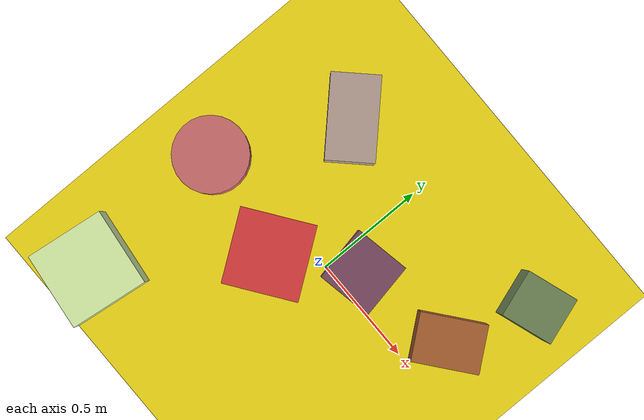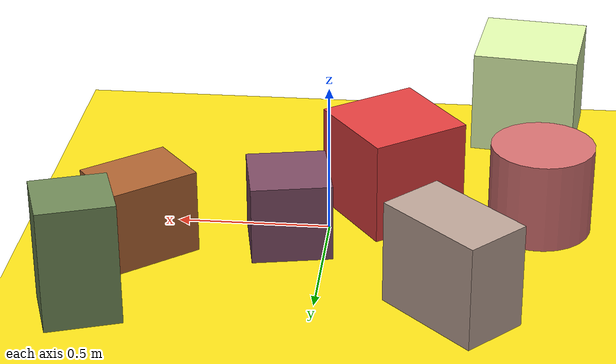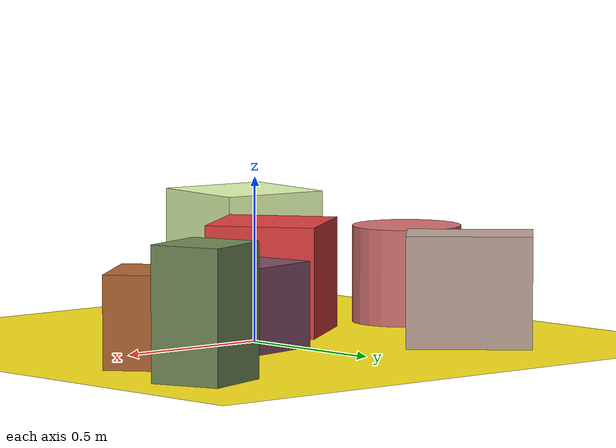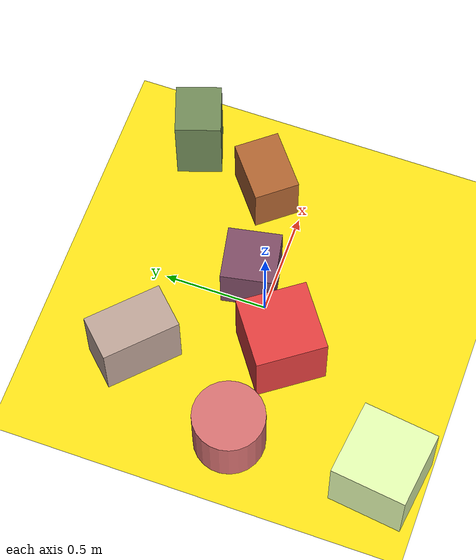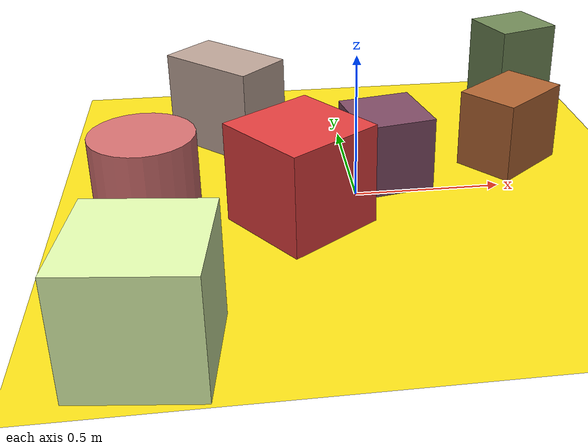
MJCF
<mujoco>
   <asset>
<texture type="skybox" builtin="gradient" rgb1="0.2 0.4 0.4" rgb2="0.4 0.9 0.7" width="500" height="500"/>
<texture name="flat_0" builtin="flat" rgb1="0.9 1.0 0.7" rgb2="0.9 1.0 0.7"  width="500" height="500"/>
<texture name="gradient_1" builtin="gradient" rgb1="0.7 0.4 0.5" rgb2="1.0 0.5 0.4" width="500" height="500"/>
<texture name="gradient_2" builtin="gradient" rgb1="0.8 0.0 0.1" rgb2="0.6 0.8 0.3" width="500" height="500"/>
<texture name="checker_3" builtin="checker" rgb1="0.3 0.7 0.3" rgb2="0.6 0.4 0.4" width="500" height="500"/>
<texture name="checker_4" builtin="checker" rgb1="0.8 0.3 0.3" rgb2="1.0 0.2 0.2" width="500" height="500"/>
<texture name="gradient_5" builtin="gradient" rgb1="0.7 0.5 0.5" rgb2="0.3 0.1 0.3" width="500" height="500"/>
<texture name="checker_6" builtin="checker" rgb1="1.0 0.5 0.7" rgb2="0.5 0.8 0.5" width="500" height="500"/><material name="flat_0_mat" reflectance="0.4350156869528564" texture="flat_0" texuniform="true"/>
<material name="gradient_1_mat" reflectance="0.5510495905612455" texture="gradient_1" texuniform="true"/>
<material name="gradient_2_mat" reflectance="0.5237440267821378" texture="gradient_2" texuniform="true"/>
<material name="checker_3_mat" reflectance="0.6958732604369441" texrepeat="6 6" texture="checker_3" texuniform="false" />
<material name="checker_4_mat" reflectance="0.007236870668525297" texrepeat="10 10" texture="checker_4" texuniform="false" />
<material name="gradient_5_mat" reflectance="0.7546186044807623" texture="gradient_5" texuniform="true"/>
<material name="checker_6_mat" reflectance="0.6291174783976697" texrepeat="5 5" texture="checker_6" texuniform="false" />
   </asset>

   <worldbody>
     <geom type="plane" size="1 1 0.1" rgba="1.0 0.9 0.1 1" />
<light pos="-0.787641128438439 0.06865326685811346 2" dir="0 0 -1" cutoff="90" diffuse="1 1 1" specular="1 1 1"/>
<geom type="box" pos="-0.65 -0.79 0.18" size="0.18 0.18 0.18" material="flat_0_mat" euler="0 0 83" />
<geom type="cylinder" pos="-0.69 -0.07 0.15" size="0.17 0.15 0.15" material="gradient_1_mat" euler="0 0 80" />
<geom type="box" pos="0.59 0.2 0.14" size="0.15 0.11 0.14" material="gradient_2_mat" euler="0 0 39" />
<geom type="box" pos="0.71 0.59 0.2" size="0.12 0.11 0.2" material="checker_3_mat" euler="0 0 19" />
<geom type="box" pos="-0.2 -0.15 0.17" size="0.17 0.17 0.17" material="checker_4_mat" euler="0 0 36" />
<geom type="box" pos="0.12 0.11 0.13" size="0.13 0.13 0.13" material="gradient_5_mat" euler="0 0 11" />
<geom type="box" pos="-0.42 0.5 0.17" size="0.11 0.19 0.17" material="checker_6_mat" euler="0 0 46" /><camera euler="60 0 180" fovy="60" name="camera1" pos="-0.2 -1.5 1"></camera>   </worldbody>
   <visual>
      <headlight diffuse="0.7 0.7 0.7"/>
   </visual>
</mujoco>
